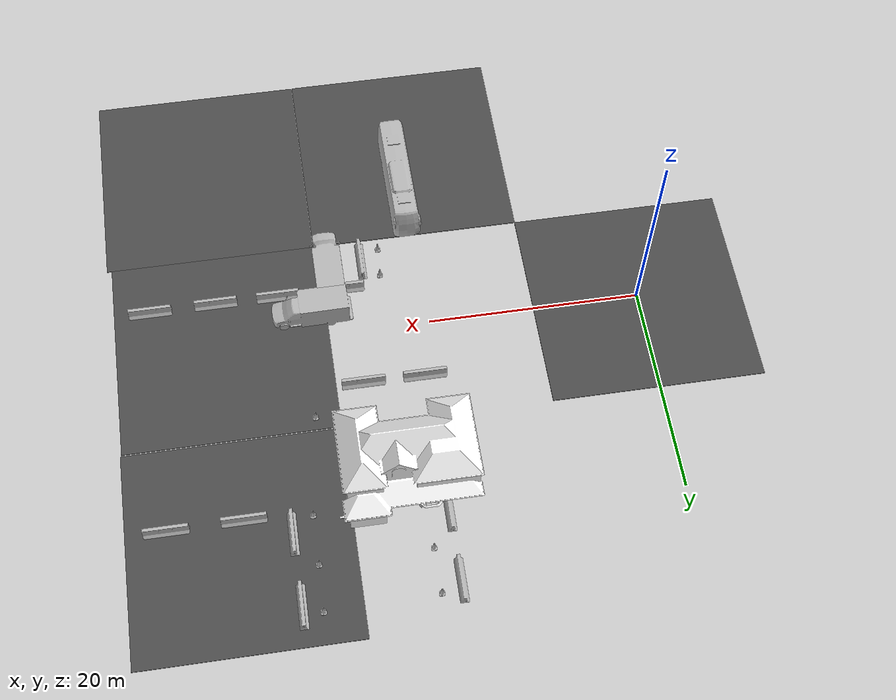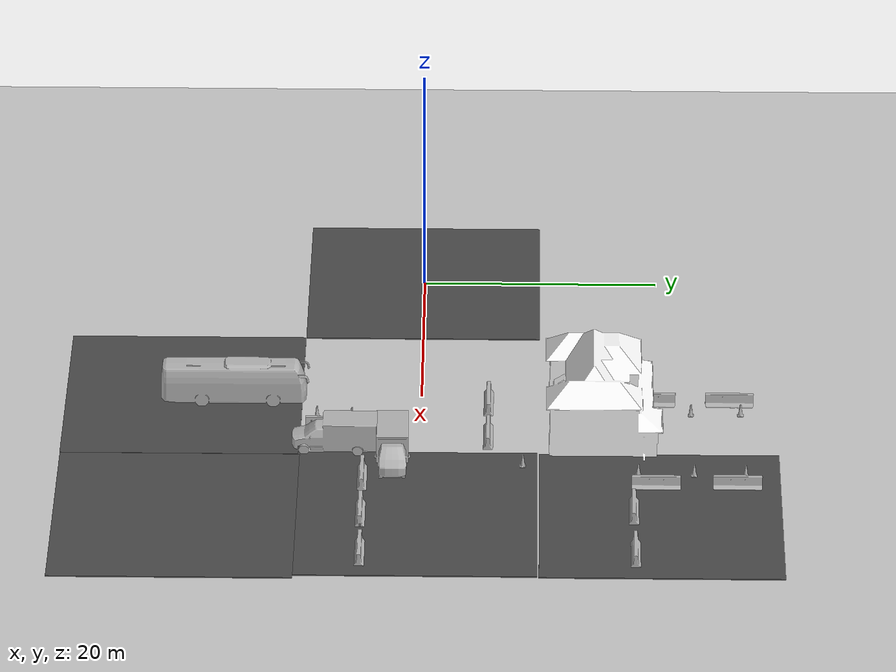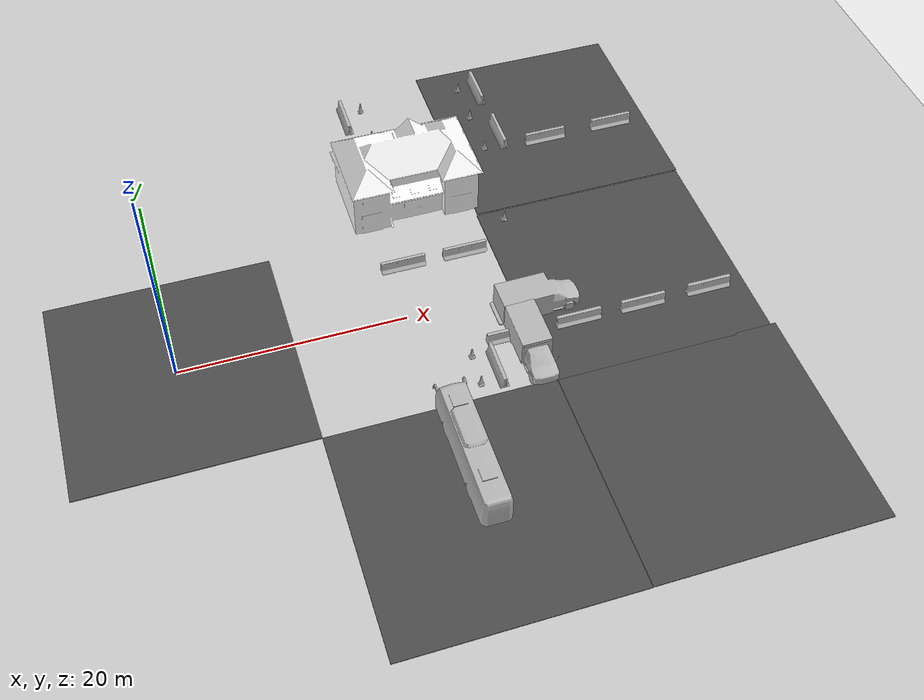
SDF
<sdf version="1.6">
 <world name="default">
  <model name="ground_plane">
   <static>1</static>
   <link name="link">
    <collision name="collision">
     <geometry><plane><normal>0 0 1</normal><size>100 100</size></plane></geometry>
     <surface><friction><ode><mu>100</mu><mu2>50</mu2></ode></friction></surface>
    </collision>
    <visual name="visual">
     <cast_shadows>0</cast_shadows>
     <geometry><plane><normal>0 0 1</normal><size>100 100</size></plane></geometry>
     <material>
      <script><uri>file://media/materials/scripts/gazebo.material</uri><name>Gazebo/Grey</name></script>
     </material>
    </visual>
   </link>
  </model>
  <model name="asphalt_plane">
   <static>1</static>
   <link name="link">
    <collision name="collision"><geometry><box><size>20 20 0.1</size></box></geometry></collision>
    <visual name="visual">
     <cast_shadows>0</cast_shadows>
     <geometry><box><size>20 20 0.1</size></box></geometry>
     <material>
      <script>
       <uri>model://asphalt_plane/materials/scripts</uri>
       <uri>model://asphalt_plane/materials/textures</uri>
       <name>vrc/asphalt</name>
      </script>
     </material>
    </visual>
   </link>
   <pose>0.038401 -0.024145 0 0 -0 0</pose>
  </model>
  <model name="ambulance">
   <static>1</static>
   <link name="link">
    <collision name="collision">
     <geometry>
      <mesh><scale>0.0254 0.0254 0.0254</scale><uri>model://ambulance/meshes/ambulance.obj</uri></mesh>
     </geometry>
    </collision>
    <visual name="visual">
     <geometry>
      <mesh><scale>0.0254 0.0254 0.0254</scale><uri>model://ambulance/meshes/ambulance.obj</uri></mesh>
     </geometry>
    </visual>
   </link>
   <pose>28.9053 -6.81225 0 0 -0 0</pose>
  </model>
  <model name="jersey_barrier_clone_clone_11">
   <static>1</static>
   <link name="link">
    <visual name="visual">
     <geometry><mesh><uri>model://jersey_barrier/meshes/jersey_barrier.dae</uri></mesh></geometry>
    </visual>
    <collision name="upright">
     <pose>0 0 0.5715 0 -0 0</pose>
     <geometry><box><size>4.06542 0.3063 1.143</size></box></geometry>
    </collision>
    <collision name="base">
     <pose>0 0 0.032258 0 -0 0</pose>
     <geometry><box><size>4.06542 0.8107 0.064516</size></box></geometry>
    </collision>
    <collision name="base2">
     <pose>0 0 0.1 0 -0 0</pose>
     <geometry><box><size>4.06542 0.65 0.1</size></box></geometry>
    </collision>
    <collision name="base3">
     <pose>0 0 0.2 0 -0 0</pose>
     <geometry><box><size>4.06542 0.5 0.1</size></box></geometry>
    </collision>
    <collision name="left-angle">
     <pose>0 -0.224 0.2401 0.9 -0 0</pose>
     <geometry><box><size>4.06542 0.5 0.064516</size></box></geometry>
    </collision>
    <collision name="right-angle">
     <pose>0 0.224 0.2401 -0.9 0 0</pose>
     <geometry><box><size>4.06542 0.5 0.064516</size></box></geometry>
    </collision>
   </link>
   <pose>21.3176 5.68789 0 0 -0 0</pose>
  </model>
  <model name="jersey_barrier_clone_clone_12">
   <static>1</static>
   <link name="link">
    <visual name="visual">
     <geometry><mesh><uri>model://jersey_barrier/meshes/jersey_barrier.dae</uri></mesh></geometry>
    </visual>
    <collision name="upright">
     <pose>0 0 0.5715 0 -0 0</pose>
     <geometry><box><size>4.06542 0.3063 1.143</size></box></geometry>
    </collision>
    <collision name="base">
     <pose>0 0 0.032258 0 -0 0</pose>
     <geometry><box><size>4.06542 0.8107 0.064516</size></box></geometry>
    </collision>
    <collision name="base2">
     <pose>0 0 0.1 0 -0 0</pose>
     <geometry><box><size>4.06542 0.65 0.1</size></box></geometry>
    </collision>
    <collision name="base3">
     <pose>0 0 0.2 0 -0 0</pose>
     <geometry><box><size>4.06542 0.5 0.1</size></box></geometry>
    </collision>
    <collision name="left-angle">
     <pose>0 -0.224 0.2401 0.9 -0 0</pose>
     <geometry><box><size>4.06542 0.5 0.064516</size></box></geometry>
    </collision>
    <collision name="right-angle">
     <pose>0 0.224 0.2401 -0.9 0 0</pose>
     <geometry><box><size>4.06542 0.5 0.064516</size></box></geometry>
    </collision>
   </link>
   <pose>27.054 5.68352 0 0 -0 0</pose>
  </model>
  <model name="House 2">
   <static>1</static>
   <link name="link">
    <collision name="collision">
     <geometry><mesh><uri>model://house_2/meshes/house_2.dae</uri><scale>1.5 1.5 1.5</scale></mesh></geometry>
    </collision>
    <visual name="visual">
     <geometry><mesh><uri>model://house_2/meshes/house_2.dae</uri><scale>1.5 1.5 1.5</scale></mesh></geometry>
     <material>
      <script>
       <uri>model://house_2/materials/scripts</uri>
       <uri>model://house_2/materials/textures</uri>
       <uri>model://house_1/materials/textures</uri>
       <name>House_2/Diffuse</name>
      </script>
      <shader type="normal_map_tangent_space">
       <normal_map>model://house_1/materials/textures/House_1_Normal.png</normal_map>
      </shader>
     </material>
    </visual>
   </link>
   <pose>23.2524 14.5843 0 0 -0 0</pose>
  </model>
  <model name="asphalt_plane_0_clone">
   <static>1</static>
   <link name="link">
    <collision name="collision"><geometry><box><size>20 20 0.1</size></box></geometry></collision>
    <visual name="visual">
     <cast_shadows>0</cast_shadows>
     <geometry><box><size>20 20 0.1</size></box></geometry>
     <material>
      <script>
       <uri>model://asphalt_plane/materials/scripts</uri>
       <uri>model://asphalt_plane/materials/textures</uri>
       <name>vrc/asphalt</name>
      </script>
     </material>
    </visual>
   </link>
   <pose>39.5929 -0.186293 0 0 -0 0</pose>
  </model>
  <model name="asphalt_plane_0_clone_clone">
   <static>1</static>
   <link name="link">
    <collision name="collision"><geometry><box><size>20 20 0.1</size></box></geometry></collision>
    <visual name="visual">
     <cast_shadows>0</cast_shadows>
     <geometry><box><size>20 20 0.1</size></box></geometry>
     <material>
      <script>
       <uri>model://asphalt_plane/materials/scripts</uri>
       <uri>model://asphalt_plane/materials/textures</uri>
       <name>vrc/asphalt</name>
      </script>
     </material>
    </visual>
   </link>
   <pose>39.7003 19.9457 0 0 -0 0</pose>
  </model>
  <model name="asphalt_plane_clone_clone">
   <static>1</static>
   <link name="link">
    <collision name="collision"><geometry><box><size>20 20 0.1</size></box></geometry></collision>
    <visual name="visual">
     <cast_shadows>0</cast_shadows>
     <geometry><box><size>20 20 0.1</size></box></geometry>
     <material>
      <script>
       <uri>model://asphalt_plane/materials/scripts</uri>
       <uri>model://asphalt_plane/materials/textures</uri>
       <name>vrc/asphalt</name>
      </script>
     </material>
    </visual>
   </link>
   <pose>20.0161 -20.0403 0 0 -0 0</pose>
  </model>
  <model name="asphalt_plane_clone_clone_clone">
   <static>1</static>
   <link name="link">
    <collision name="collision"><geometry><box><size>20 20 0.1</size></box></geometry></collision>
    <visual name="visual">
     <cast_shadows>0</cast_shadows>
     <geometry><box><size>20 20 0.1</size></box></geometry>
     <material>
      <script>
       <uri>model://asphalt_plane/materials/scripts</uri>
       <uri>model://asphalt_plane/materials/textures</uri>
       <name>vrc/asphalt</name>
      </script>
     </material>
    </visual>
   </link>
   <pose>40.0431 -20.0144 0 0 -0 0</pose>
  </model>
  <model name="bus_clone_clone_0_clone">
   <static>1</static>
   <link name="link">
    <collision name="collision">
     <geometry><mesh><scale>0.01 0.01 0.01</scale><uri>model://bus/meshes/bus.obj</uri></mesh></geometry>
    </collision>
    <visual name="visual">
     <geometry><mesh><scale>0.01 0.01 0.01</scale><uri>model://bus/meshes/bus.obj</uri></mesh></geometry>
    </visual>
   </link>
   <pose>20.7708 -15.7241 0 0 0 -3.13855</pose>
  </model>
  <model name="jersey_barrier_clone_clone_8_clone_4">
   <static>1</static>
   <link name="link">
    <visual name="visual">
     <geometry><mesh><uri>model://jersey_barrier/meshes/jersey_barrier.dae</uri></mesh></geometry>
    </visual>
    <collision name="upright">
     <pose>0 0 0.5715 0 -0 0</pose>
     <geometry><box><size>4.06542 0.3063 1.143</size></box></geometry>
    </collision>
    <collision name="base">
     <pose>0 0 0.032258 0 -0 0</pose>
     <geometry><box><size>4.06542 0.8107 0.064516</size></box></geometry>
    </collision>
    <collision name="base2">
     <pose>0 0 0.1 0 -0 0</pose>
     <geometry><box><size>4.06542 0.65 0.1</size></box></geometry>
    </collision>
    <collision name="base3">
     <pose>0 0 0.2 0 -0 0</pose>
     <geometry><box><size>4.06542 0.5 0.1</size></box></geometry>
    </collision>
    <collision name="left-angle">
     <pose>0 -0.224 0.2401 0.9 -0 0</pose>
     <geometry><box><size>4.06542 0.5 0.064516</size></box></geometry>
    </collision>
    <collision name="right-angle">
     <pose>0 0.224 0.2401 -0.9 0 0</pose>
     <geometry><box><size>4.06542 0.5 0.064516</size></box></geometry>
    </collision>
   </link>
   <pose>27.7078 -4.73242 0 0 -0 0</pose>
  </model>
  <model name="jersey_barrier_clone_clone_8_clone_5">
   <static>1</static>
   <link name="link">
    <visual name="visual">
     <geometry><mesh><uri>model://jersey_barrier/meshes/jersey_barrier.dae</uri></mesh></geometry>
    </visual>
    <collision name="upright">
     <pose>0 0 0.5715 0 -0 0</pose>
     <geometry><box><size>4.06542 0.3063 1.143</size></box></geometry>
    </collision>
    <collision name="base">
     <pose>0 0 0.032258 0 -0 0</pose>
     <geometry><box><size>4.06542 0.8107 0.064516</size></box></geometry>
    </collision>
    <collision name="base2">
     <pose>0 0 0.1 0 -0 0</pose>
     <geometry><box><size>4.06542 0.65 0.1</size></box></geometry>
    </collision>
    <collision name="base3">
     <pose>0 0 0.2 0 -0 0</pose>
     <geometry><box><size>4.06542 0.5 0.1</size></box></geometry>
    </collision>
    <collision name="left-angle">
     <pose>0 -0.224 0.2401 0.9 -0 0</pose>
     <geometry><box><size>4.06542 0.5 0.064516</size></box></geometry>
    </collision>
    <collision name="right-angle">
     <pose>0 0.224 0.2401 -0.9 0 0</pose>
     <geometry><box><size>4.06542 0.5 0.064516</size></box></geometry>
    </collision>
   </link>
   <pose>33.9648 -4.72392 0 0 -0 0</pose>
  </model>
  <model name="jersey_barrier_clone_clone_8_clone_6">
   <static>1</static>
   <link name="link">
    <visual name="visual">
     <geometry><mesh><uri>model://jersey_barrier/meshes/jersey_barrier.dae</uri></mesh></geometry>
    </visual>
    <collision name="upright">
     <pose>0 0 0.5715 0 -0 0</pose>
     <geometry><box><size>4.06542 0.3063 1.143</size></box></geometry>
    </collision>
    <collision name="base">
     <pose>0 0 0.032258 0 -0 0</pose>
     <geometry><box><size>4.06542 0.8107 0.064516</size></box></geometry>
    </collision>
    <collision name="base2">
     <pose>0 0 0.1 0 -0 0</pose>
     <geometry><box><size>4.06542 0.65 0.1</size></box></geometry>
    </collision>
    <collision name="base3">
     <pose>0 0 0.2 0 -0 0</pose>
     <geometry><box><size>4.06542 0.5 0.1</size></box></geometry>
    </collision>
    <collision name="left-angle">
     <pose>0 -0.224 0.2401 0.9 -0 0</pose>
     <geometry><box><size>4.06542 0.5 0.064516</size></box></geometry>
    </collision>
    <collision name="right-angle">
     <pose>0 0.224 0.2401 -0.9 0 0</pose>
     <geometry><box><size>4.06542 0.5 0.064516</size></box></geometry>
    </collision>
   </link>
   <pose>39.9021 -4.73886 0 0 -0 0</pose>
  </model>
  <model name="jersey_barrier_clone_clone_8_clone_7">
   <static>1</static>
   <link name="link">
    <visual name="visual">
     <geometry><mesh><uri>model://jersey_barrier/meshes/jersey_barrier.dae</uri></mesh></geometry>
    </visual>
    <collision name="upright">
     <pose>0 0 0.5715 0 -0 0</pose>
     <geometry><box><size>4.06542 0.3063 1.143</size></box></geometry>
    </collision>
    <collision name="base">
     <pose>0 0 0.032258 0 -0 0</pose>
     <geometry><box><size>4.06542 0.8107 0.064516</size></box></geometry>
    </collision>
    <collision name="base2">
     <pose>0 0 0.1 0 -0 0</pose>
     <geometry><box><size>4.06542 0.65 0.1</size></box></geometry>
    </collision>
    <collision name="base3">
     <pose>0 0 0.2 0 -0 0</pose>
     <geometry><box><size>4.06542 0.5 0.1</size></box></geometry>
    </collision>
    <collision name="left-angle">
     <pose>0 -0.224 0.2401 0.9 -0 0</pose>
     <geometry><box><size>4.06542 0.5 0.064516</size></box></geometry>
    </collision>
    <collision name="right-angle">
     <pose>0 0.224 0.2401 -0.9 0 0</pose>
     <geometry><box><size>4.06542 0.5 0.064516</size></box></geometry>
    </collision>
   </link>
   <pose>46.1372 -4.66127 0 0 -0 0</pose>
  </model>
  <model name="jersey_barrier_clone_clone_10_clone_4_clone">
   <static>1</static>
   <link name="link">
    <visual name="visual">
     <geometry><mesh><uri>model://jersey_barrier/meshes/jersey_barrier.dae</uri></mesh></geometry>
    </visual>
    <collision name="upright">
     <pose>0 0 0.5715 0 -0 0</pose>
     <geometry><box><size>4.06542 0.3063 1.143</size></box></geometry>
    </collision>
    <collision name="base">
     <pose>0 0 0.032258 0 -0 0</pose>
     <geometry><box><size>4.06542 0.8107 0.064516</size></box></geometry>
    </collision>
    <collision name="base2">
     <pose>0 0 0.1 0 -0 0</pose>
     <geometry><box><size>4.06542 0.65 0.1</size></box></geometry>
    </collision>
    <collision name="base3">
     <pose>0 0 0.2 0 -0 0</pose>
     <geometry><box><size>4.06542 0.5 0.1</size></box></geometry>
    </collision>
    <collision name="left-angle">
     <pose>0 -0.224 0.2401 0.9 -0 0</pose>
     <geometry><box><size>4.06542 0.5 0.064516</size></box></geometry>
    </collision>
    <collision name="right-angle">
     <pose>0 0.224 0.2401 -0.9 0 0</pose>
     <geometry><box><size>4.06542 0.5 0.064516</size></box></geometry>
    </collision>
   </link>
   <pose>21.206 19.3838 0 0 -0 1.56251</pose>
  </model>
  <model name="jersey_barrier_clone_clone_10_clone_4_clone_0">
   <static>1</static>
   <link name="link">
    <visual name="visual">
     <geometry><mesh><uri>model://jersey_barrier/meshes/jersey_barrier.dae</uri></mesh></geometry>
    </visual>
    <collision name="upright">
     <pose>0 0 0.5715 0 -0 0</pose>
     <geometry><box><size>4.06542 0.3063 1.143</size></box></geometry>
    </collision>
    <collision name="base">
     <pose>0 0 0.032258 0 -0 0</pose>
     <geometry><box><size>4.06542 0.8107 0.064516</size></box></geometry>
    </collision>
    <collision name="base2">
     <pose>0 0 0.1 0 -0 0</pose>
     <geometry><box><size>4.06542 0.65 0.1</size></box></geometry>
    </collision>
    <collision name="base3">
     <pose>0 0 0.2 0 -0 0</pose>
     <geometry><box><size>4.06542 0.5 0.1</size></box></geometry>
    </collision>
    <collision name="left-angle">
     <pose>0 -0.224 0.2401 0.9 -0 0</pose>
     <geometry><box><size>4.06542 0.5 0.064516</size></box></geometry>
    </collision>
    <collision name="right-angle">
     <pose>0 0.224 0.2401 -0.9 0 0</pose>
     <geometry><box><size>4.06542 0.5 0.064516</size></box></geometry>
    </collision>
   </link>
   <pose>21.1935 25.9774 0 0 -0 1.56251</pose>
  </model>
  <model name="jersey_barrier_clone_clone_10_clone_4_clone_1">
   <static>1</static>
   <link name="link">
    <visual name="visual">
     <geometry><mesh><uri>model://jersey_barrier/meshes/jersey_barrier.dae</uri></mesh></geometry>
    </visual>
    <collision name="upright">
     <pose>0 0 0.5715 0 -0 0</pose>
     <geometry><box><size>4.06542 0.3063 1.143</size></box></geometry>
    </collision>
    <collision name="base">
     <pose>0 0 0.032258 0 -0 0</pose>
     <geometry><box><size>4.06542 0.8107 0.064516</size></box></geometry>
    </collision>
    <collision name="base2">
     <pose>0 0 0.1 0 -0 0</pose>
     <geometry><box><size>4.06542 0.65 0.1</size></box></geometry>
    </collision>
    <collision name="base3">
     <pose>0 0 0.2 0 -0 0</pose>
     <geometry><box><size>4.06542 0.5 0.1</size></box></geometry>
    </collision>
    <collision name="left-angle">
     <pose>0 -0.224 0.2401 0.9 -0 0</pose>
     <geometry><box><size>4.06542 0.5 0.064516</size></box></geometry>
    </collision>
    <collision name="right-angle">
     <pose>0 0.224 0.2401 -0.9 0 0</pose>
     <geometry><box><size>4.06542 0.5 0.064516</size></box></geometry>
    </collision>
   </link>
   <pose>34.9873 26.3752 0 0 -0 1.56251</pose>
  </model>
  <model name="jersey_barrier_clone_clone_10_clone_4_clone_2">
   <static>1</static>
   <link name="link">
    <visual name="visual">
     <geometry><mesh><uri>model://jersey_barrier/meshes/jersey_barrier.dae</uri></mesh></geometry>
    </visual>
    <collision name="upright">
     <pose>0 0 0.5715 0 -0 0</pose>
     <geometry><box><size>4.06542 0.3063 1.143</size></box></geometry>
    </collision>
    <collision name="base">
     <pose>0 0 0.032258 0 -0 0</pose>
     <geometry><box><size>4.06542 0.8107 0.064516</size></box></geometry>
    </collision>
    <collision name="base2">
     <pose>0 0 0.1 0 -0 0</pose>
     <geometry><box><size>4.06542 0.65 0.1</size></box></geometry>
    </collision>
    <collision name="base3">
     <pose>0 0 0.2 0 -0 0</pose>
     <geometry><box><size>4.06542 0.5 0.1</size></box></geometry>
    </collision>
    <collision name="left-angle">
     <pose>0 -0.224 0.2401 0.9 -0 0</pose>
     <geometry><box><size>4.06542 0.5 0.064516</size></box></geometry>
    </collision>
    <collision name="right-angle">
     <pose>0 0.224 0.2401 -0.9 0 0</pose>
     <geometry><box><size>4.06542 0.5 0.064516</size></box></geometry>
    </collision>
   </link>
   <pose>35.0755 19.6397 0 0 -0 1.56251</pose>
  </model>
  <model name="jersey_barrier_clone_clone_10_clone_5_clone">
   <static>1</static>
   <link name="link">
    <visual name="visual">
     <geometry><mesh><uri>model://jersey_barrier/meshes/jersey_barrier.dae</uri></mesh></geometry>
    </visual>
    <collision name="upright">
     <pose>0 0 0.5715 0 -0 0</pose>
     <geometry><box><size>4.06542 0.3063 1.143</size></box></geometry>
    </collision>
    <collision name="base">
     <pose>0 0 0.032258 0 -0 0</pose>
     <geometry><box><size>4.06542 0.8107 0.064516</size></box></geometry>
    </collision>
    <collision name="base2">
     <pose>0 0 0.1 0 -0 0</pose>
     <geometry><box><size>4.06542 0.65 0.1</size></box></geometry>
    </collision>
    <collision name="base3">
     <pose>0 0 0.2 0 -0 0</pose>
     <geometry><box><size>4.06542 0.5 0.1</size></box></geometry>
    </collision>
    <collision name="left-angle">
     <pose>0 -0.224 0.2401 0.9 -0 0</pose>
     <geometry><box><size>4.06542 0.5 0.064516</size></box></geometry>
    </collision>
    <collision name="right-angle">
     <pose>0 0.224 0.2401 -0.9 0 0</pose>
     <geometry><box><size>4.06542 0.5 0.064516</size></box></geometry>
    </collision>
   </link>
   <pose>39.1829 17.758 0 0 -0 0</pose>
  </model>
  <model name="jersey_barrier_clone_clone_10_clone_5_clone_0">
   <static>1</static>
   <link name="link">
    <visual name="visual">
     <geometry><mesh><uri>model://jersey_barrier/meshes/jersey_barrier.dae</uri></mesh></geometry>
    </visual>
    <collision name="upright">
     <pose>0 0 0.5715 0 -0 0</pose>
     <geometry><box><size>4.06542 0.3063 1.143</size></box></geometry>
    </collision>
    <collision name="base">
     <pose>0 0 0.032258 0 -0 0</pose>
     <geometry><box><size>4.06542 0.8107 0.064516</size></box></geometry>
    </collision>
    <collision name="base2">
     <pose>0 0 0.1 0 -0 0</pose>
     <geometry><box><size>4.06542 0.65 0.1</size></box></geometry>
    </collision>
    <collision name="base3">
     <pose>0 0 0.2 0 -0 0</pose>
     <geometry><box><size>4.06542 0.5 0.1</size></box></geometry>
    </collision>
    <collision name="left-angle">
     <pose>0 -0.224 0.2401 0.9 -0 0</pose>
     <geometry><box><size>4.06542 0.5 0.064516</size></box></geometry>
    </collision>
    <collision name="right-angle">
     <pose>0 0.224 0.2401 -0.9 0 0</pose>
     <geometry><box><size>4.06542 0.5 0.064516</size></box></geometry>
    </collision>
   </link>
   <pose>46.0268 17.8348 0 0 -0 0</pose>
  </model>
  <model name="jersey_barrier_clone_clone_10_clone_4_clone_2_clone">
   <static>1</static>
   <link name="link">
    <visual name="visual">
     <geometry><mesh><uri>model://jersey_barrier/meshes/jersey_barrier.dae</uri></mesh></geometry>
    </visual>
    <collision name="upright">
     <pose>0 0 0.5715 0 -0 0</pose>
     <geometry><box><size>4.06542 0.3063 1.143</size></box></geometry>
    </collision>
    <collision name="base">
     <pose>0 0 0.032258 0 -0 0</pose>
     <geometry><box><size>4.06542 0.8107 0.064516</size></box></geometry>
    </collision>
    <collision name="base2">
     <pose>0 0 0.1 0 -0 0</pose>
     <geometry><box><size>4.06542 0.65 0.1</size></box></geometry>
    </collision>
    <collision name="base3">
     <pose>0 0 0.2 0 -0 0</pose>
     <geometry><box><size>4.06542 0.5 0.1</size></box></geometry>
    </collision>
    <collision name="left-angle">
     <pose>0 -0.224 0.2401 0.9 -0 0</pose>
     <geometry><box><size>4.06542 0.5 0.064516</size></box></geometry>
    </collision>
    <collision name="right-angle">
     <pose>0 0.224 0.2401 -0.9 0 0</pose>
     <geometry><box><size>4.06542 0.5 0.064516</size></box></geometry>
    </collision>
   </link>
   <pose>25.6373 -7.61754 0 0 -0 1.56251</pose>
  </model>
  <model name="Construction Cone">
   <link name="link">
    <collision name="collision">
     <geometry>
      <mesh><scale>10 10 10</scale><uri>model://construction_cone/meshes/construction_cone.dae</uri></mesh>
     </geometry>
    </collision>
    <visual name="visual">
     <geometry>
      <mesh><scale>10 10 10</scale><uri>model://construction_cone/meshes/construction_cone.dae</uri></mesh>
     </geometry>
    </visual>
    <inertial>
     <inertia><ixx>1</ixx><ixy>0</ixy><ixz>0</ixz><iyy>1</iyy><iyz>0</iyz><izz>1</izz></inertia>
     <mass>1</mass>
    </inertial>
   </link>
   <pose>31.8325 8.60086 0.05 0 0 -0.000256</pose>
  </model>
  <model name="Construction Cone_clone">
   <link name="link">
    <collision name="collision">
     <geometry>
      <mesh><scale>10 10 10</scale><uri>model://construction_cone/meshes/construction_cone.dae</uri></mesh>
     </geometry>
    </collision>
    <visual name="visual">
     <geometry>
      <mesh><scale>10 10 10</scale><uri>model://construction_cone/meshes/construction_cone.dae</uri></mesh>
     </geometry>
    </visual>
    <inertial>
     <inertia><ixx>1</ixx><ixy>0</ixy><ixz>0</ixz><iyy>1</iyy><iyz>0</iyz><izz>1</izz></inertia>
     <mass>1</mass>
    </inertial>
   </link>
   <pose>23.9965 -5.78965 0.05 0 -1e-06 -0.000256</pose>
  </model>
  <model name="Construction Cone_clone_0">
   <link name="link">
    <collision name="collision">
     <geometry>
      <mesh><scale>10 10 10</scale><uri>model://construction_cone/meshes/construction_cone.dae</uri></mesh>
     </geometry>
    </collision>
    <visual name="visual">
     <geometry>
      <mesh><scale>10 10 10</scale><uri>model://construction_cone/meshes/construction_cone.dae</uri></mesh>
     </geometry>
    </visual>
    <inertial>
     <inertia><ixx>1</ixx><ixy>0</ixy><ixz>0</ixz><iyy>1</iyy><iyz>0</iyz><izz>1</izz></inertia>
     <mass>1</mass>
    </inertial>
   </link>
   <pose>23.8379 -8.72392 0.05 1e-06 0 -0.000256</pose>
  </model>
  <model name="Construction Cone_clone_3">
   <link name="link">
    <collision name="collision">
     <geometry>
      <mesh><scale>10 10 10</scale><uri>model://construction_cone/meshes/construction_cone.dae</uri></mesh>
     </geometry>
    </collision>
    <visual name="visual">
     <geometry>
      <mesh><scale>10 10 10</scale><uri>model://construction_cone/meshes/construction_cone.dae</uri></mesh>
     </geometry>
    </visual>
    <inertial>
     <inertia><ixx>1</ixx><ixy>0</ixy><ixz>0</ixz><iyy>1</iyy><iyz>0</iyz><izz>1</izz></inertia>
     <mass>1</mass>
    </inertial>
   </link>
   <pose>23.5628 18.5323 0.264675 -1.02307 2e-06 1.00036</pose>
  </model>
  <model name="Construction Cone_clone_4">
   <link name="link">
    <collision name="collision">
     <geometry>
      <mesh><scale>10 10 10</scale><uri>model://construction_cone/meshes/construction_cone.dae</uri></mesh>
     </geometry>
    </collision>
    <visual name="visual">
     <geometry>
      <mesh><scale>10 10 10</scale><uri>model://construction_cone/meshes/construction_cone.dae</uri></mesh>
     </geometry>
    </visual>
    <inertial>
     <inertia><ixx>1</ixx><ixy>0</ixy><ixz>0</ixz><iyy>1</iyy><iyz>0</iyz><izz>1</izz></inertia>
     <mass>1</mass>
    </inertial>
   </link>
   <pose>23.0765 22.7018 0.049991 0 -1e-06 -0.000256</pose>
  </model>
  <model name="Construction Cone_clone_5">
   <link name="link">
    <collision name="collision">
     <geometry>
      <mesh><scale>10 10 10</scale><uri>model://construction_cone/meshes/construction_cone.dae</uri></mesh>
     </geometry>
    </collision>
    <visual name="visual">
     <geometry>
      <mesh><scale>10 10 10</scale><uri>model://construction_cone/meshes/construction_cone.dae</uri></mesh>
     </geometry>
    </visual>
    <inertial>
     <inertia><ixx>1</ixx><ixy>0</ixy><ixz>0</ixz><iyy>1</iyy><iyz>0</iyz><izz>1</izz></inertia>
     <mass>1</mass>
    </inertial>
   </link>
   <pose>23.0322 26.8775 0.05 0 0 -0.000256</pose>
  </model>
  <model name="Construction Cone_clone_6">
   <link name="link">
    <collision name="collision">
     <geometry>
      <mesh><scale>10 10 10</scale><uri>model://construction_cone/meshes/construction_cone.dae</uri></mesh>
     </geometry>
    </collision>
    <visual name="visual">
     <geometry>
      <mesh><scale>10 10 10</scale><uri>model://construction_cone/meshes/construction_cone.dae</uri></mesh>
     </geometry>
    </visual>
    <inertial>
     <inertia><ixx>1</ixx><ixy>0</ixy><ixz>0</ixz><iyy>1</iyy><iyz>0</iyz><izz>1</izz></inertia>
     <mass>1</mass>
    </inertial>
   </link>
   <pose>33.239 27.0933 0.05 3e-06 1e-06 -0.000256</pose>
  </model>
  <model name="Construction Cone_clone_8">
   <link name="link">
    <collision name="collision">
     <geometry>
      <mesh><scale>10 10 10</scale><uri>model://construction_cone/meshes/construction_cone.dae</uri></mesh>
     </geometry>
    </collision>
    <visual name="visual">
     <geometry>
      <mesh><scale>10 10 10</scale><uri>model://construction_cone/meshes/construction_cone.dae</uri></mesh>
     </geometry>
    </visual>
    <inertial>
     <inertia><ixx>1</ixx><ixy>0</ixy><ixz>0</ixz><iyy>1</iyy><iyz>0</iyz><izz>1</izz></inertia>
     <mass>1</mass>
    </inertial>
   </link>
   <pose>33.1469 18.1725 0.05 0 0 -0.000256</pose>
  </model>
  <model name="Construction Cone_clone_7">
   <link name="link">
    <collision name="collision">
     <geometry>
      <mesh><scale>10 10 10</scale><uri>model://construction_cone/meshes/construction_cone.dae</uri></mesh>
     </geometry>
    </collision>
    <visual name="visual">
     <geometry>
      <mesh><scale>10 10 10</scale><uri>model://construction_cone/meshes/construction_cone.dae</uri></mesh>
     </geometry>
    </visual>
    <inertial>
     <inertia><ixx>1</ixx><ixy>0</ixy><ixz>0</ixz><iyy>1</iyy><iyz>0</iyz><izz>1</izz></inertia>
     <mass>1</mass>
    </inertial>
   </link>
   <pose>33.153 22.8111 0.05 0 2e-06 -0.000256</pose>
  </model>
  <model name="ambulance_clone_0_clone">
   <static>1</static>
   <link name="link">
    <collision name="collision">
     <geometry>
      <mesh><scale>0.0254 0.0254 0.0254</scale><uri>model://ambulance/meshes/ambulance.obj</uri></mesh>
     </geometry>
    </collision>
    <visual name="visual">
     <geometry>
      <mesh><scale>0.0254 0.0254 0.0254</scale><uri>model://ambulance/meshes/ambulance.obj</uri></mesh>
     </geometry>
    </visual>
   </link>
   <pose>30.8483 -2.25546 0 0 -0 1.58332</pose>
  </model>
 </world>
</sdf>
